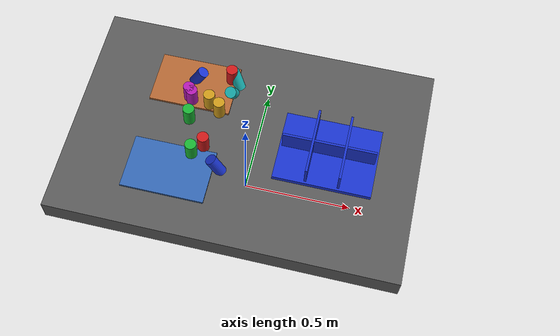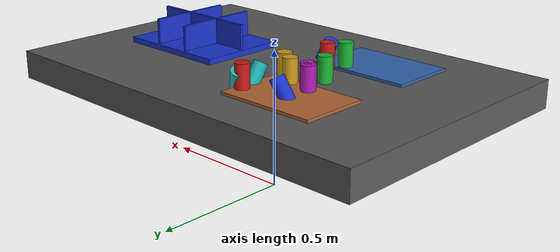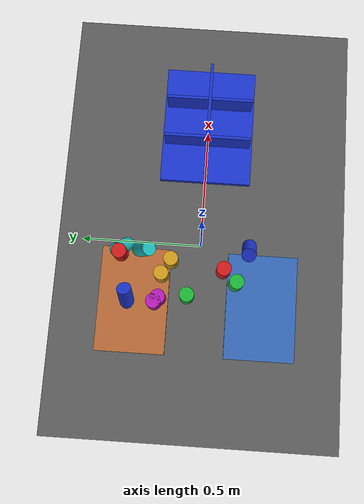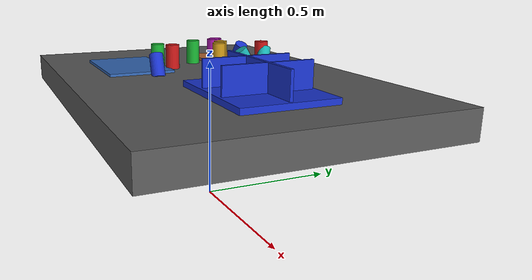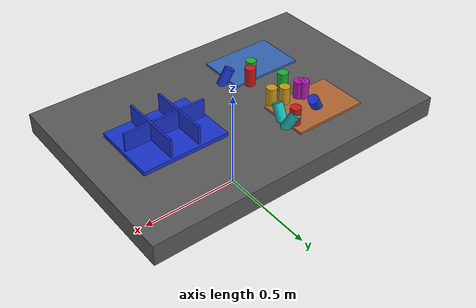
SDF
<?xml version="1.0" ?>
<sdf version="1.9">
  <!-- Standalone M1B scene.  The controller-backed Panda is spawned by the
       existing launch path; this file never alters the frozen M1A cube world. -->
  <world name="industrial_cylinder_v1">
    <physics name="bullet" type="bullet"><max_step_size>0.001</max_step_size><real_time_factor>1.0</real_time_factor></physics>
    <plugin name="gz::sim::systems::Physics" filename="gz-sim-physics-system"><engine><filename>gz-physics-bullet-featherstone-plugin</filename></engine></plugin>
    <plugin name="gz::sim::systems::UserCommands" filename="gz-sim-user-commands-system"/>
    <plugin name="gz::sim::systems::SceneBroadcaster" filename="gz-sim-scene-broadcaster-system"/>
    <plugin name="gz::sim::systems::Sensors" filename="gz-sim-sensors-system"><render_engine>ogre2</render_engine></plugin>
    <gravity>0 0 -9.81</gravity>
    <light type="directional" name="industrial_light"><pose>0 0 5 0 0 0</pose><direction>-0.3 0.2 -0.9</direction><diffuse>0.9 0.9 0.9 1</diffuse></light>
    <model name="industrial_work_table"><static>true</static><link name="link"><pose>0 0 0.4 0 0 0</pose><collision name="collision"><geometry><box><size>1.5 1.0 0.1</size></box></geometry></collision><visual name="visual"><geometry><box><size>1.5 1.0 0.1</size></box></geometry><material><diffuse>0.35 0.35 0.35 1</diffuse></material></visual></link></model>
    <model name="camera_fixture"><static>true</static><link name="camera_rgbd"><pose>-0.80 -0.80 1.40 0 0.77 0.93</pose><sensor name="front_rgbd" type="rgbd_camera"><always_on>1</always_on><update_rate>15</update_rate><topic>/xh/camera/rgbd</topic><camera><horizontal_fov>1.047</horizontal_fov><image><width>640</width><height>480</height><format>R8G8B8</format></image><clip><near>0.1</near><far>4.0</far></clip></camera></sensor></link></model>
    <model name="incoming_zone_a"><static>true</static><link name="link"><pose>-0.28 -0.22 0.455 0 0 0</pose><visual name="visual"><geometry><box><size>0.36 0.24 0.01</size></box></geometry><material><diffuse>0.2 0.4 0.7 1</diffuse></material></visual></link></model>
    <model name="incoming_zone_b"><static>true</static><link name="link"><pose>-0.28 0.22 0.455 0 0 0</pose><visual name="visual"><geometry><box><size>0.36 0.24 0.01</size></box></geometry><material><diffuse>0.7 0.4 0.2 1</diffuse></material></visual></link></model>
    <!-- M1B_RANDOM_PARTS_BEGIN -->
    <model name="cylinder_01"><pose>-0.1263 0.2732 0.5000 0.0000 0.0000 -3.0005</pose><link name="link"><inertial><mass>0.06</mass></inertial><collision name="collision"><geometry><cylinder><radius>0.025</radius><length>0.09</length></cylinder></geometry></collision><visual name="visual"><geometry><cylinder><radius>0.025</radius><length>0.09</length></cylinder></geometry><material><diffuse>0.800 0.100 0.100 1</diffuse><specular>0.15 0.15 0.15 1</specular></material></visual></link></model>
    <model name="cylinder_02"><pose>-0.2054 -0.1289 0.5000 3.1416 0.0000 1.5935</pose><link name="link"><inertial><mass>0.06</mass></inertial><collision name="collision"><geometry><cylinder><radius>0.025</radius><length>0.09</length></cylinder></geometry></collision><visual name="visual"><geometry><cylinder><radius>0.025</radius><length>0.09</length></cylinder></geometry><material><diffuse>0.100 0.700 0.200 1</diffuse><specular>0.15 0.15 0.15 1</specular></material></visual></link></model>
    <model name="cylinder_03"><pose>-0.2725 0.2435 0.4800 0.4500 -0.3000 2.3295</pose><link name="link"><inertial><mass>0.06</mass></inertial><collision name="collision"><geometry><cylinder><radius>0.025</radius><length>0.09</length></cylinder></geometry></collision><visual name="visual"><geometry><cylinder><radius>0.025</radius><length>0.09</length></cylinder></geometry><material><diffuse>0.100 0.200 0.800 1</diffuse><specular>0.15 0.15 0.15 1</specular></material></visual></link></model>
    <model name="cylinder_04"><pose>-0.1918 0.1267 0.5000 0.0000 0.0000 -0.0476</pose><link name="link"><inertial><mass>0.06</mass></inertial><collision name="collision"><geometry><cylinder><radius>0.025</radius><length>0.09</length></cylinder></geometry></collision><visual name="visual"><geometry><cylinder><radius>0.025</radius><length>0.09</length></cylinder></geometry><material><diffuse>0.800 0.600 0.100 1</diffuse><specular>0.15 0.15 0.15 1</specular></material></visual></link></model>
    <model name="cylinder_05"><pose>-0.2717 0.1314 0.5000 3.1416 0.0000 -1.1554</pose><link name="link"><inertial><mass>0.06</mass></inertial><collision name="collision"><geometry><cylinder><radius>0.025</radius><length>0.09</length></cylinder></geometry></collision><visual name="visual"><geometry><cylinder><radius>0.025</radius><length>0.09</length></cylinder></geometry><material><diffuse>0.700 0.100 0.700 1</diffuse><specular>0.15 0.15 0.15 1</specular></material></visual></link></model>
    <model name="cylinder_06"><pose>-0.1031 0.2701 0.4800 0.4500 -0.3000 -1.6887</pose><link name="link"><inertial><mass>0.06</mass></inertial><collision name="collision"><geometry><cylinder><radius>0.025</radius><length>0.09</length></cylinder></geometry></collision><visual name="visual"><geometry><cylinder><radius>0.025</radius><length>0.09</length></cylinder></geometry><material><diffuse>0.100 0.700 0.700 1</diffuse><specular>0.15 0.15 0.15 1</specular></material></visual></link></model>
    <model name="cylinder_07"><pose>-0.1641 -0.0835 0.5000 0.0000 0.0000 2.3209</pose><link name="link"><inertial><mass>0.06</mass></inertial><collision name="collision"><geometry><cylinder><radius>0.025</radius><length>0.09</length></cylinder></geometry></collision><visual name="visual"><geometry><cylinder><radius>0.025</radius><length>0.09</length></cylinder></geometry><material><diffuse>0.800 0.100 0.100 1</diffuse><specular>0.15 0.15 0.15 1</specular></material></visual></link></model>
    <model name="cylinder_08"><pose>-0.2589 0.0357 0.5000 3.1416 0.0000 2.4550</pose><link name="link"><inertial><mass>0.06</mass></inertial><collision name="collision"><geometry><cylinder><radius>0.025</radius><length>0.09</length></cylinder></geometry></collision><visual name="visual"><geometry><cylinder><radius>0.025</radius><length>0.09</length></cylinder></geometry><material><diffuse>0.100 0.700 0.200 1</diffuse><specular>0.15 0.15 0.15 1</specular></material></visual></link></model>
    <model name="cylinder_09"><pose>-0.0871 -0.1695 0.4800 0.4500 -0.3000 -1.1452</pose><link name="link"><inertial><mass>0.06</mass></inertial><collision name="collision"><geometry><cylinder><radius>0.025</radius><length>0.09</length></cylinder></geometry></collision><visual name="visual"><geometry><cylinder><radius>0.025</radius><length>0.09</length></cylinder></geometry><material><diffuse>0.100 0.200 0.800 1</diffuse><specular>0.15 0.15 0.15 1</specular></material></visual></link></model>
    <model name="cylinder_10"><pose>-0.1411 0.0973 0.5000 0.0000 0.0000 2.0366</pose><link name="link"><inertial><mass>0.06</mass></inertial><collision name="collision"><geometry><cylinder><radius>0.025</radius><length>0.09</length></cylinder></geometry></collision><visual name="visual"><geometry><cylinder><radius>0.025</radius><length>0.09</length></cylinder></geometry><material><diffuse>0.800 0.600 0.100 1</diffuse><specular>0.15 0.15 0.15 1</specular></material></visual></link></model>
    <model name="cylinder_11"><pose>-0.2869 0.1458 0.5000 3.1416 0.0000 -0.7581</pose><link name="link"><inertial><mass>0.06</mass></inertial><collision name="collision"><geometry><cylinder><radius>0.025</radius><length>0.09</length></cylinder></geometry></collision><visual name="visual"><geometry><cylinder><radius>0.025</radius><length>0.09</length></cylinder></geometry><material><diffuse>0.700 0.100 0.700 1</diffuse><specular>0.15 0.15 0.15 1</specular></material></visual></link></model>
    <model name="cylinder_12"><pose>-0.1068 0.1967 0.4800 0.4500 -0.3000 0.4538</pose><link name="link"><inertial><mass>0.06</mass></inertial><collision name="collision"><geometry><cylinder><radius>0.025</radius><length>0.09</length></cylinder></geometry></collision><visual name="visual"><geometry><cylinder><radius>0.025</radius><length>0.09</length></cylinder></geometry><material><diffuse>0.100 0.700 0.700 1</diffuse><specular>0.15 0.15 0.15 1</specular></material></visual></link></model>
    <!-- M1B_RANDOM_PARTS_END -->
    <model name="blue_partition_bin"><static>true</static><pose>0.36 0 0.45 0 0 0</pose><link name="link"><collision name="floor"><pose>0 0 0.01 0 0 0</pose><geometry><box><size>0.42 0.32 0.02</size></box></geometry></collision><visual name="floor_visual"><pose>0 0 0.01 0 0 0</pose><geometry><box><size>0.42 0.32 0.02</size></box></geometry><material><diffuse>0.1 0.2 0.8 1</diffuse></material></visual><visual name="row_divider"><pose>0 0 0.06 0 0 0</pose><geometry><box><size>0.40 0.01 0.10</size></box></geometry><material><diffuse>0.1 0.2 0.8 1</diffuse></material></visual><visual name="col_divider_a"><pose>-0.07 0 0.06 0 0 0</pose><geometry><box><size>0.01 0.30 0.10</size></box></geometry><material><diffuse>0.1 0.2 0.8 1</diffuse></material></visual><visual name="col_divider_b"><pose>0.07 0 0.06 0 0 0</pose><geometry><box><size>0.01 0.30 0.10</size></box></geometry><material><diffuse>0.1 0.2 0.8 1</diffuse></material></visual></link></model>
    <!-- Reserved only: second table, bin transport corridor, stackable-bin
         collision volume, and second arm mounting namespace. -->
  </world>
</sdf>
